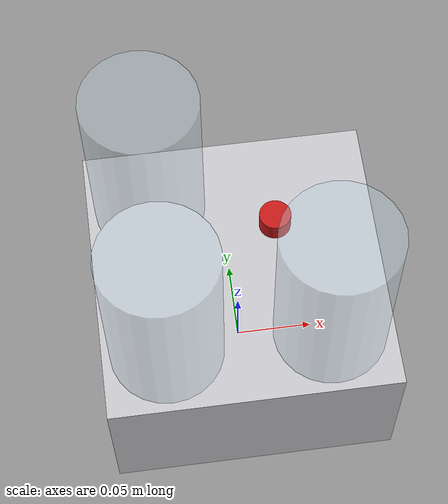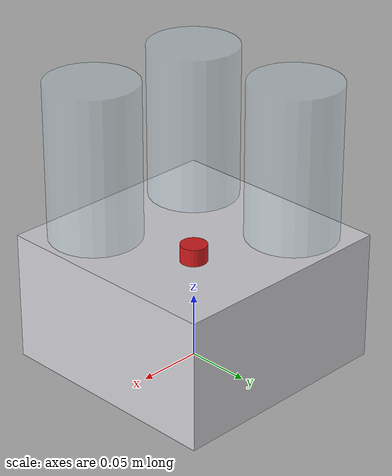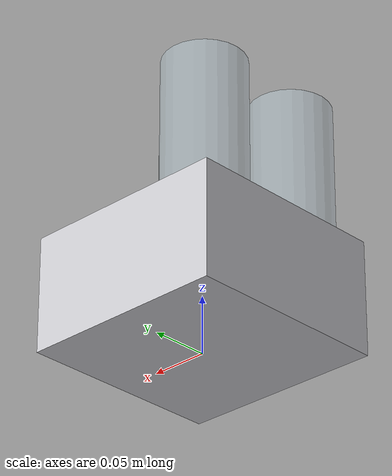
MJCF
<?xml version="1.0" encoding="utf-8"?>
<mujoco model="dissolution_tester">
  <compiler angle="radian" autolimits="true"/>
  <default>
    <default class="body"><geom contype="1" conaffinity="1"/></default>
  </default>
  <worldbody>
    <body name="base">
      <geom type="box" size="0.09 0.09 0.05" pos="0 0 0.05" rgba="0.8 0.8 0.82 1" class="body"/>
      <geom type="box" size="0.027 0.0045 0.0125" pos="-0.045 -0.081 0.07500000000000001" rgba="0.9 0.7 0.1 1" class="body"/>
      <geom type="cylinder" size="0.035 0.06" pos="-0.05 -0.05 0.16" rgba="0.75 0.85 0.9 0.35" class="body"/>
      <geom type="cylinder" size="0.035 0.06" pos="0.05 -0.05 0.16" rgba="0.75 0.85 0.9 0.35" class="body"/>
      <geom type="cylinder" size="0.035 0.06" pos="-0.05 0.05 0.16" rgba="0.75 0.85 0.9 0.35" class="body"/>
      <body name="knob" pos="0.027 0.027 0.10500000000000001">
        <joint name="knob_joint" type="hinge" axis="0 0 1" range="-3.14159 3.14159" damping="0.3" frictionloss="0.1"/>
  <geom type="cylinder" size="0.01 0.008" pos="0 0 0" rgba="0.8 0.1 0.1 1" class="body"/>
      </body>
    </body>
  </worldbody>
</mujoco>
